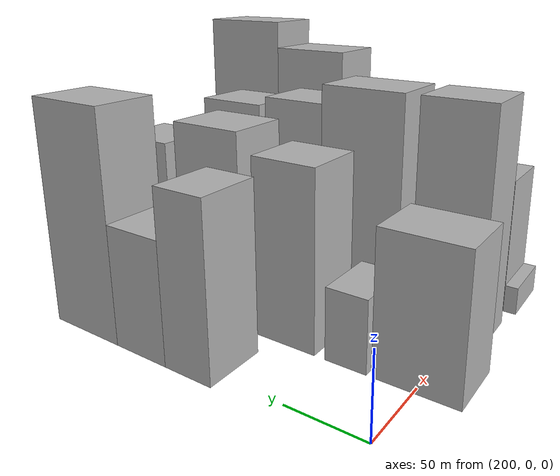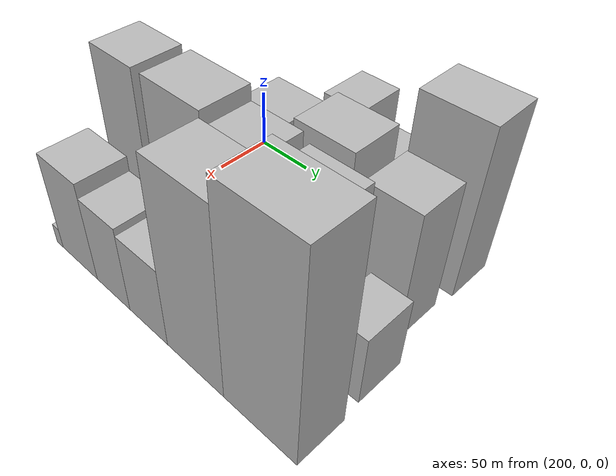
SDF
<sdf version="1.6">
 <world name="default">
  <model name="building_132">
   <static>1</static>
   <pose>210.0000 105.9684 0 0.000000 0.000000 0.000000</pose>
   <link name="link">
    <pose>0 0 52.50 0 0 0</pose>
    <collision name="collision"><geometry><box><size>40.0000 33.1295 105.0000</size></box></geometry></collision>
    <visual name="visual">
     <cast_shadows>0</cast_shadows>
     <geometry><box><size>40.0000 33.1295 105.0000</size></box></geometry>
     <material>
      <script>
       <uri>model://HANNAS_wall/materials/scripts</uri>
       <uri>model://HANNAS_wall/materials/textures</uri>
       <name>vrc/HANNAS_wall</name>
      </script>
     </material>
    </visual>
   </link>
  </model>
  <model name="building_133">
   <static>1</static>
   <pose>210.0000 142.0532 0 0.000000 0.000000 0.000000</pose>
   <link name="link">
    <pose>0 0 37.50 0 0 0</pose>
    <collision name="collision"><geometry><box><size>40.0000 39.0401 75.0000</size></box></geometry></collision>
    <visual name="visual">
     <cast_shadows>0</cast_shadows>
     <geometry><box><size>40.0000 39.0401 75.0000</size></box></geometry>
     <material>
      <script>
       <uri>model://HANNAS_wall/materials/scripts</uri>
       <uri>model://HANNAS_wall/materials/textures</uri>
       <name>vrc/HANNAS_wall</name>
      </script>
     </material>
    </visual>
   </link>
  </model>
  <model name="building_134">
   <static>1</static>
   <pose>210.0000 188.6467 0 0.000000 0.000000 0.000000</pose>
   <link name="link">
    <pose>0 0 70.50 0 0 0</pose>
    <collision name="collision"><geometry><box><size>40.0000 54.1470 141.0000</size></box></geometry></collision>
    <visual name="visual">
     <cast_shadows>0</cast_shadows>
     <geometry><box><size>40.0000 54.1470 141.0000</size></box></geometry>
     <material>
      <script>
       <uri>model://HANNAS_wall/materials/scripts</uri>
       <uri>model://HANNAS_wall/materials/textures</uri>
       <name>vrc/HANNAS_wall</name>
      </script>
     </material>
    </visual>
   </link>
  </model>
  <model name="building_179">
   <static>1</static>
   <pose>265.0000 -1.0252 0 0.000000 0.000000 0.000000</pose>
   <link name="link">
    <pose>0 0 43.50 0 0 0</pose>
    <collision name="collision"><geometry><box><size>40.0000 50.8981 87.0000</size></box></geometry></collision>
    <visual name="visual">
     <cast_shadows>0</cast_shadows>
     <geometry><box><size>40.0000 50.8981 87.0000</size></box></geometry>
     <material>
      <script>
       <uri>model://HANNAS_wall/materials/scripts</uri>
       <uri>model://HANNAS_wall/materials/textures</uri>
       <name>vrc/HANNAS_wall</name>
      </script>
     </material>
    </visual>
   </link>
  </model>
  <model name="building_180">
   <static>1</static>
   <pose>265.0000 40.6143 0 0.000000 0.000000 0.000000</pose>
   <link name="link">
    <pose>0 0 22.50 0 0 0</pose>
    <collision name="collision"><geometry><box><size>40.0000 26.3809 45.0000</size></box></geometry></collision>
    <visual name="visual">
     <cast_shadows>0</cast_shadows>
     <geometry><box><size>40.0000 26.3809 45.0000</size></box></geometry>
     <material>
      <script>
       <uri>model://HANNAS_wall/materials/scripts</uri>
       <uri>model://HANNAS_wall/materials/textures</uri>
       <name>vrc/HANNAS_wall</name>
      </script>
     </material>
    </visual>
   </link>
  </model>
  <model name="building_181">
   <static>1</static>
   <pose>265.0000 82.0659 0 0.000000 0.000000 0.000000</pose>
   <link name="link">
    <pose>0 0 55.50 0 0 0</pose>
    <collision name="collision"><geometry><box><size>40.0000 42.5222 111.0000</size></box></geometry></collision>
    <visual name="visual">
     <cast_shadows>0</cast_shadows>
     <geometry><box><size>40.0000 42.5222 111.0000</size></box></geometry>
     <material>
      <script>
       <uri>model://HANNAS_wall/materials/scripts</uri>
       <uri>model://HANNAS_wall/materials/textures</uri>
       <name>vrc/HANNAS_wall</name>
      </script>
     </material>
    </visual>
   </link>
  </model>
  <model name="building_182">
   <static>1</static>
   <pose>265.0000 137.5683 0 0.000000 0.000000 0.000000</pose>
   <link name="link">
    <pose>0 0 61.50 0 0 0</pose>
    <collision name="collision"><geometry><box><size>40.0000 48.4827 123.0000</size></box></geometry></collision>
    <visual name="visual">
     <cast_shadows>0</cast_shadows>
     <geometry><box><size>40.0000 48.4827 123.0000</size></box></geometry>
     <material>
      <script>
       <uri>model://HANNAS_wall/materials/scripts</uri>
       <uri>model://HANNAS_wall/materials/textures</uri>
       <name>vrc/HANNAS_wall</name>
      </script>
     </material>
    </visual>
   </link>
  </model>
  <model name="building_183">
   <static>1</static>
   <pose>265.0000 165.9304 0 0.000000 0.000000 0.000000</pose>
   <link name="link">
    <pose>0 0 9.00 0 0 0</pose>
    <collision name="collision"><geometry><box><size>40.0000 8.2415 18.0000</size></box></geometry></collision>
    <visual name="visual">
     <cast_shadows>0</cast_shadows>
     <geometry><box><size>40.0000 8.2415 18.0000</size></box></geometry>
     <material>
      <script>
       <uri>model://HANNAS_wall/materials/scripts</uri>
       <uri>model://HANNAS_wall/materials/textures</uri>
       <name>vrc/HANNAS_wall</name>
      </script>
     </material>
    </visual>
   </link>
  </model>
  <model name="building_184">
   <static>1</static>
   <pose>265.0000 190.9765 0 0.000000 0.000000 0.000000</pose>
   <link name="link">
    <pose>0 0 54.00 0 0 0</pose>
    <collision name="collision"><geometry><box><size>40.0000 41.8508 108.0000</size></box></geometry></collision>
    <visual name="visual">
     <cast_shadows>0</cast_shadows>
     <geometry><box><size>40.0000 41.8508 108.0000</size></box></geometry>
     <material>
      <script>
       <uri>model://HANNAS_wall/materials/scripts</uri>
       <uri>model://HANNAS_wall/materials/textures</uri>
       <name>vrc/HANNAS_wall</name>
      </script>
     </material>
    </visual>
   </link>
  </model>
  <model name="building_234">
   <static>1</static>
   <pose>320.0000 6.5917 0 0.000000 0.000000 0.000000</pose>
   <link name="link">
    <pose>0 0 72.00 0 0 0</pose>
    <collision name="collision"><geometry><box><size>40.0000 43.8138 144.0000</size></box></geometry></collision>
    <visual name="visual">
     <cast_shadows>0</cast_shadows>
     <geometry><box><size>40.0000 43.8138 144.0000</size></box></geometry>
     <material>
      <script>
       <uri>model://HANNAS_wall/materials/scripts</uri>
       <uri>model://HANNAS_wall/materials/textures</uri>
       <name>vrc/HANNAS_wall</name>
      </script>
     </material>
    </visual>
   </link>
  </model>
  <model name="building_235">
   <static>1</static>
   <pose>320.0000 64.8345 0 0.000000 0.000000 0.000000</pose>
   <link name="link">
    <pose>0 0 72.00 0 0 0</pose>
    <collision name="collision"><geometry><box><size>40.0000 54.6718 144.0000</size></box></geometry></collision>
    <visual name="visual">
     <cast_shadows>0</cast_shadows>
     <geometry><box><size>40.0000 54.6718 144.0000</size></box></geometry>
     <material>
      <script>
       <uri>model://HANNAS_wall/materials/scripts</uri>
       <uri>model://HANNAS_wall/materials/textures</uri>
       <name>vrc/HANNAS_wall</name>
      </script>
     </material>
    </visual>
   </link>
  </model>
  <model name="building_236">
   <static>1</static>
   <pose>320.0000 113.6345 0 0.000000 0.000000 0.000000</pose>
   <link name="link">
    <pose>0 0 66.00 0 0 0</pose>
    <collision name="collision"><geometry><box><size>40.0000 42.9283 132.0000</size></box></geometry></collision>
    <visual name="visual">
     <cast_shadows>0</cast_shadows>
     <geometry><box><size>40.0000 42.9283 132.0000</size></box></geometry>
     <material>
      <script>
       <uri>model://HANNAS_wall/materials/scripts</uri>
       <uri>model://HANNAS_wall/materials/textures</uri>
       <name>vrc/HANNAS_wall</name>
      </script>
     </material>
    </visual>
   </link>
  </model>
  <model name="building_237">
   <static>1</static>
   <pose>320.0000 163.7812 0 0.000000 0.000000 0.000000</pose>
   <link name="link">
    <pose>0 0 63.00 0 0 0</pose>
    <collision name="collision"><geometry><box><size>40.0000 47.3652 126.0000</size></box></geometry></collision>
    <visual name="visual">
     <cast_shadows>0</cast_shadows>
     <geometry><box><size>40.0000 47.3652 126.0000</size></box></geometry>
     <material>
      <script>
       <uri>model://HANNAS_wall/materials/scripts</uri>
       <uri>model://HANNAS_wall/materials/textures</uri>
       <name>vrc/HANNAS_wall</name>
      </script>
     </material>
    </visual>
   </link>
  </model>
  <model name="building_238">
   <static>1</static>
   <pose>320.0000 209.0367 0 0.000000 0.000000 0.000000</pose>
   <link name="link">
    <pose>0 0 30.00 0 0 0</pose>
    <collision name="collision"><geometry><box><size>40.0000 31.1458 60.0000</size></box></geometry></collision>
    <visual name="visual">
     <cast_shadows>0</cast_shadows>
     <geometry><box><size>40.0000 31.1458 60.0000</size></box></geometry>
     <material>
      <script>
       <uri>model://HANNAS_wall/materials/scripts</uri>
       <uri>model://HANNAS_wall/materials/textures</uri>
       <name>vrc/HANNAS_wall</name>
      </script>
     </material>
    </visual>
   </link>
  </model>
  <model name="building_290">
   <static>1</static>
   <pose>375.0000 -15.4998 0 0.000000 0.000000 0.000000</pose>
   <link name="link">
    <pose>0 0 9.00 0 0 0</pose>
    <collision name="collision"><geometry><box><size>40.0000 8.0641 18.0000</size></box></geometry></collision>
    <visual name="visual">
     <cast_shadows>0</cast_shadows>
     <geometry><box><size>40.0000 8.0641 18.0000</size></box></geometry>
     <material>
      <script>
       <uri>model://HANNAS_wall/materials/scripts</uri>
       <uri>model://HANNAS_wall/materials/textures</uri>
       <name>vrc/HANNAS_wall</name>
      </script>
     </material>
    </visual>
   </link>
  </model>
  <model name="building_291">
   <static>1</static>
   <pose>375.0000 10.5020 0 0.000000 0.000000 0.000000</pose>
   <link name="link">
    <pose>0 0 43.50 0 0 0</pose>
    <collision name="collision"><geometry><box><size>40.0000 43.9395 87.0000</size></box></geometry></collision>
    <visual name="visual">
     <cast_shadows>0</cast_shadows>
     <geometry><box><size>40.0000 43.9395 87.0000</size></box></geometry>
     <material>
      <script>
       <uri>model://HANNAS_wall/materials/scripts</uri>
       <uri>model://HANNAS_wall/materials/textures</uri>
       <name>vrc/HANNAS_wall</name>
      </script>
     </material>
    </visual>
   </link>
  </model>
  <model name="building_292">
   <static>1</static>
   <pose>375.0000 51.6043 0 0.000000 0.000000 0.000000</pose>
   <link name="link">
    <pose>0 0 37.50 0 0 0</pose>
    <collision name="collision"><geometry><box><size>40.0000 38.2651 75.0000</size></box></geometry></collision>
    <visual name="visual">
     <cast_shadows>0</cast_shadows>
     <geometry><box><size>40.0000 38.2651 75.0000</size></box></geometry>
     <material>
      <script>
       <uri>model://HANNAS_wall/materials/scripts</uri>
       <uri>model://HANNAS_wall/materials/textures</uri>
       <name>vrc/HANNAS_wall</name>
      </script>
     </material>
    </visual>
   </link>
  </model>
  <model name="building_293">
   <static>1</static>
   <pose>375.0000 90.9633 0 0.000000 0.000000 0.000000</pose>
   <link name="link">
    <pose>0 0 34.50 0 0 0</pose>
    <collision name="collision"><geometry><box><size>40.0000 40.4528 69.0000</size></box></geometry></collision>
    <visual name="visual">
     <cast_shadows>0</cast_shadows>
     <geometry><box><size>40.0000 40.4528 69.0000</size></box></geometry>
     <material>
      <script>
       <uri>model://HANNAS_wall/materials/scripts</uri>
       <uri>model://HANNAS_wall/materials/textures</uri>
       <name>vrc/HANNAS_wall</name>
      </script>
     </material>
    </visual>
   </link>
  </model>
  <model name="building_294">
   <static>1</static>
   <pose>375.0000 138.2174 0 0.000000 0.000000 0.000000</pose>
   <link name="link">
    <pose>0 0 78.00 0 0 0</pose>
    <collision name="collision"><geometry><box><size>40.0000 54.0555 156.0000</size></box></geometry></collision>
    <visual name="visual">
     <cast_shadows>0</cast_shadows>
     <geometry><box><size>40.0000 54.0555 156.0000</size></box></geometry>
     <material>
      <script>
       <uri>model://HANNAS_wall/materials/scripts</uri>
       <uri>model://HANNAS_wall/materials/textures</uri>
       <name>vrc/HANNAS_wall</name>
      </script>
     </material>
    </visual>
   </link>
  </model>
  <model name="building_295">
   <static>1</static>
   <pose>375.0000 195.7997 0 0.000000 0.000000 0.000000</pose>
   <link name="link">
    <pose>0 0 87.00 0 0 0</pose>
    <collision name="collision"><geometry><box><size>40.0000 61.1090 174.0000</size></box></geometry></collision>
    <visual name="visual">
     <cast_shadows>0</cast_shadows>
     <geometry><box><size>40.0000 61.1090 174.0000</size></box></geometry>
     <material>
      <script>
       <uri>model://HANNAS_wall/materials/scripts</uri>
       <uri>model://HANNAS_wall/materials/textures</uri>
       <name>vrc/HANNAS_wall</name>
      </script>
     </material>
    </visual>
   </link>
  </model>
 </world>
</sdf>
